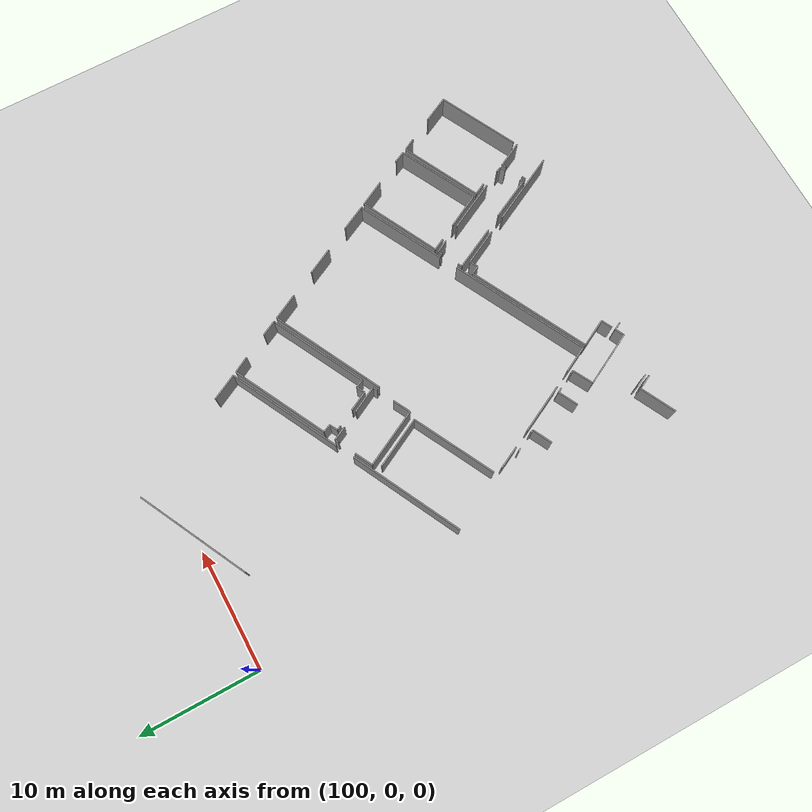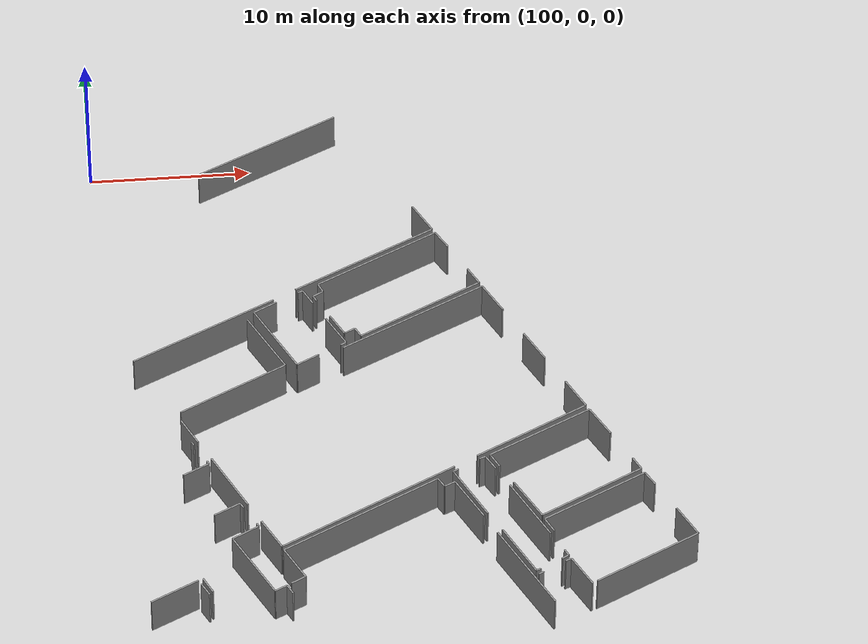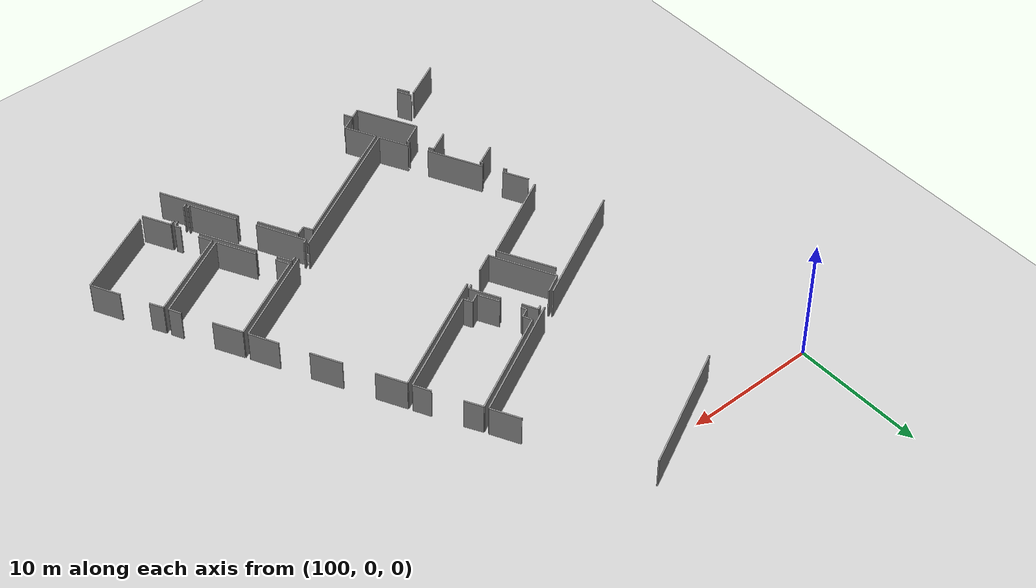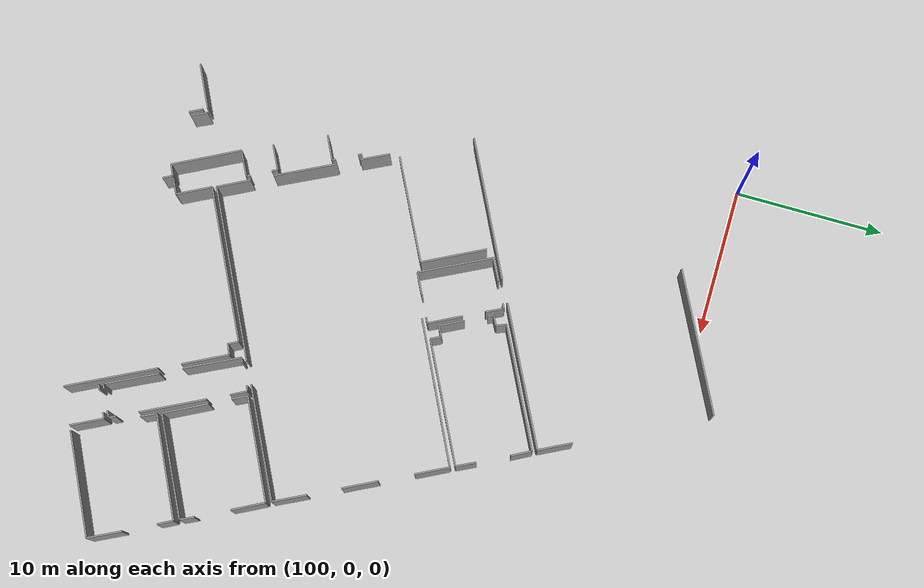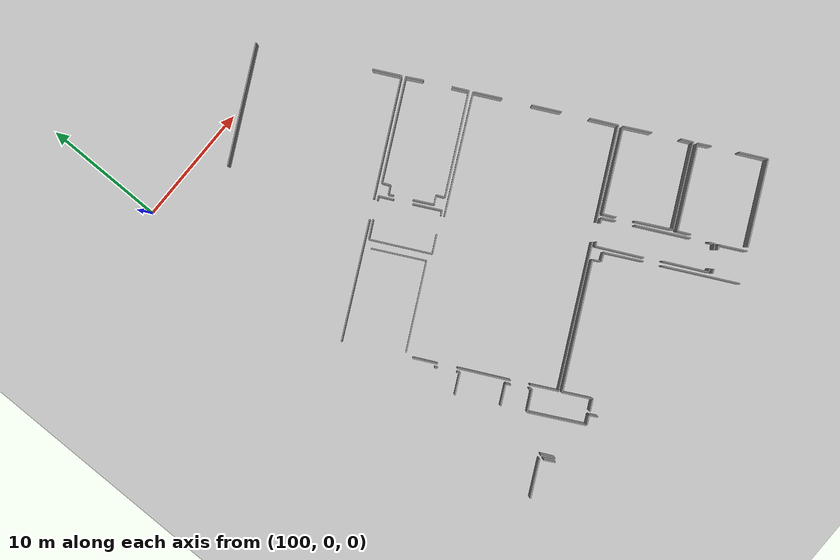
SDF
<sdf version="1.6">
 <world name="default">
  <model name="ground_plane">
   <static>1</static>
   <link name="link">
    <collision name="collision">
     <geometry><plane><normal>0 0 1</normal><size>100 100</size></plane></geometry>
     <surface><friction><ode><mu>100</mu><mu2>50</mu2></ode></friction></surface>
    </collision>
    <visual name="visual">
     <cast_shadows>0</cast_shadows>
     <geometry><plane><normal>0 0 1</normal><size>100 100</size></plane></geometry>
     <material>
      <script><uri>file://media/materials/scripts/gazebo.material</uri><name>Gazebo/Grey</name></script>
     </material>
    </visual>
   </link>
  </model>
  <model name="0510045922_A-40">
   <static>1</static>
   <link name="Wall_853">
    <collision name="Wall_853_Collision">
     <geometry><box><size>9.88843768265 0.1 2.5</size></box></geometry>
     <pose>4.94421884133 0 1.25 0 0 0</pose>
    </collision>
    <visual name="Wall_853_Visual">
     <pose>4.94421884133 0 1.25 0 0 0</pose>
     <geometry><box><size>9.88843768265 0.1 2.5</size></box></geometry>
     <material>
      <script><uri>file://media/materials/scripts/gazebo.material</uri><name>Gazebo/Grey</name></script>
      <ambient>1 1 1 1</ambient>
     </material>
    </visual>
    <pose>240.852564021 -103.605108979 0 0 0 0.468590665649</pose>
   </link>
   <link name="Wall_856">
    <collision name="Wall_856_Collision">
     <geometry><box><size>2.32012355589 0.1 2.5</size></box></geometry>
     <pose>1.16006177794 0 1.25 0 0 0</pose>
    </collision>
    <visual name="Wall_856_Visual">
     <pose>1.16006177794 0 1.25 0 0 0</pose>
     <geometry><box><size>2.32012355589 0.1 2.5</size></box></geometry>
     <material>
      <script><uri>file://media/materials/scripts/gazebo.material</uri><name>Gazebo/Grey</name></script>
      <ambient>1 1 1 1</ambient>
     </material>
    </visual>
    <pose>253.924941221 -107.462260914 0 0 0 -1.09881966004</pose>
   </link>
   <link name="Wall_857">
    <collision name="Wall_857_Collision">
     <geometry><box><size>9.86540242691 0.1 2.5</size></box></geometry>
     <pose>4.93270121346 0 1.25 0 0 0</pose>
    </collision>
    <visual name="Wall_857_Visual">
     <pose>4.93270121346 0 1.25 0 0 0</pose>
     <geometry><box><size>9.86540242691 0.1 2.5</size></box></geometry>
     <material>
      <script><uri>file://media/materials/scripts/gazebo.material</uri><name>Gazebo/Grey</name></script>
      <ambient>1 1 1 1</ambient>
     </material>
    </visual>
    <pose>254.979780136 -109.528728474 0 0 0 -2.66907277639</pose>
   </link>
   <link name="Wall_858">
    <collision name="Wall_858_Collision">
     <geometry><box><size>9.83522041012 0.1 2.5</size></box></geometry>
     <pose>4.91761020506 0 1.25 0 0 0</pose>
    </collision>
    <visual name="Wall_858_Visual">
     <pose>4.91761020506 0 1.25 0 0 0</pose>
     <geometry><box><size>9.83522041012 0.1 2.5</size></box></geometry>
     <material>
      <script><uri>file://media/materials/scripts/gazebo.material</uri><name>Gazebo/Grey</name></script>
      <ambient>1 1 1 1</ambient>
     </material>
    </visual>
    <pose>244.774531359 -114.782334625 0 0 0 -2.67339132095</pose>
   </link>
   <link name="Wall_863">
    <collision name="Wall_863_Collision">
     <geometry><box><size>4.43714760593 0.1 2.5</size></box></geometry>
     <pose>2.21857380297 0 1.25 0 0 0</pose>
    </collision>
    <visual name="Wall_863_Visual">
     <pose>2.21857380297 0 1.25 0 0 0</pose>
     <geometry><box><size>4.43714760593 0.1 2.5</size></box></geometry>
     <material>
      <script><uri>file://media/materials/scripts/gazebo.material</uri><name>Gazebo/Grey</name></script>
      <ambient>1 1 1 1</ambient>
     </material>
    </visual>
    <pose>243.094414437 -116.32773718 0 0 0 -1.09538967794</pose>
   </link>
   <link name="Wall_864">
    <collision name="Wall_864_Collision">
     <geometry><box><size>7.33349535567 0.1 2.5</size></box></geometry>
     <pose>3.66674767783 0 1.25 0 0 0</pose>
    </collision>
    <visual name="Wall_864_Visual">
     <pose>3.66674767783 0 1.25 0 0 0</pose>
     <geometry><box><size>7.33349535567 0.1 2.5</size></box></geometry>
     <material>
      <script><uri>file://media/materials/scripts/gazebo.material</uri><name>Gazebo/Grey</name></script>
      <ambient>1 1 1 1</ambient>
     </material>
    </visual>
    <pose>245.125297071 -120.272834721 0 0 0 -2.66600947746</pose>
   </link>
   <link name="Wall_867">
    <collision name="Wall_867_Collision">
     <geometry><box><size>8.46894523162 0.1 2.5</size></box></geometry>
     <pose>4.23447261581 0 1.25 0 0 0</pose>
    </collision>
    <visual name="Wall_867_Visual">
     <pose>4.23447261581 0 1.25 0 0 0</pose>
     <geometry><box><size>8.46894523162 0.1 2.5</size></box></geometry>
     <material>
      <script><uri>file://media/materials/scripts/gazebo.material</uri><name>Gazebo/Grey</name></script>
      <ambient>1 1 1 1</ambient>
     </material>
    </visual>
    <pose>247.588282392 -113.686064688 0 0 0 0.471727861592</pose>
   </link>
   <link name="Wall_868">
    <collision name="Wall_868_Collision">
     <geometry><box><size>1.42261302946 0.1 2.5</size></box></geometry>
     <pose>0.711306514728 0 1.25 0 0 0</pose>
    </collision>
    <visual name="Wall_868_Visual">
     <pose>0.711306514728 0 1.25 0 0 0</pose>
     <geometry><box><size>1.42261302946 0.1 2.5</size></box></geometry>
     <material>
      <script><uri>file://media/materials/scripts/gazebo.material</uri><name>Gazebo/Grey</name></script>
      <ambient>1 1 1 1</ambient>
     </material>
    </visual>
    <pose>255.132286967 -109.837554807 0 0 0 -1.07350296104</pose>
   </link>
   <link name="Wall_869">
    <collision name="Wall_869_Collision">
     <geometry><box><size>1.36133524182 0.1 2.5</size></box></geometry>
     <pose>0.680667620912 0 1.25 0 0 0</pose>
    </collision>
    <visual name="Wall_869_Visual">
     <pose>0.680667620912 0 1.25 0 0 0</pose>
     <geometry><box><size>1.36133524182 0.1 2.5</size></box></geometry>
     <material>
      <script><uri>file://media/materials/scripts/gazebo.material</uri><name>Gazebo/Grey</name></script>
      <ambient>1 1 1 1</ambient>
     </material>
    </visual>
    <pose>256.837821694 -113.10526784 0 0 0 -1.10823422171</pose>
   </link>
   <link name="Wall_870">
    <collision name="Wall_870_Collision">
     <geometry><box><size>8.51497389838 0.1 2.5</size></box></geometry>
     <pose>4.25748694919 0 1.25 0 0 0</pose>
    </collision>
    <visual name="Wall_870_Visual">
     <pose>4.25748694919 0 1.25 0 0 0</pose>
     <geometry><box><size>8.51497389838 0.1 2.5</size></box></geometry>
     <material>
      <script><uri>file://media/materials/scripts/gazebo.material</uri><name>Gazebo/Grey</name></script>
      <ambient>1 1 1 1</ambient>
     </material>
    </visual>
    <pose>257.445307238 -114.323543242 0 0 0 -2.66715832209</pose>
   </link>
   <link name="Wall_871">
    <collision name="Wall_871_Collision">
     <geometry><box><size>0.717277671889 0.1 2.5</size></box></geometry>
     <pose>0.358638835944 0 1.25 0 0 0</pose>
    </collision>
    <visual name="Wall_871_Visual">
     <pose>0.358638835944 0 1.25 0 0 0</pose>
     <geometry><box><size>0.717277671889 0.1 2.5</size></box></geometry>
     <material>
      <script><uri>file://media/materials/scripts/gazebo.material</uri><name>Gazebo/Grey</name></script>
      <ambient>1 1 1 1</ambient>
     </material>
    </visual>
    <pose>249.870801296 -118.213484146 0 0 0 2.02968961346</pose>
   </link>
   <link name="Wall_872">
    <collision name="Wall_872_Collision">
     <geometry><box><size>0.748653610339 0.1 2.5</size></box></geometry>
     <pose>0.374326805169 0 1.25 0 0 0</pose>
    </collision>
    <visual name="Wall_872_Visual">
     <pose>0.374326805169 0 1.25 0 0 0</pose>
     <geometry><box><size>0.748653610339 0.1 2.5</size></box></geometry>
     <material>
      <script><uri>file://media/materials/scripts/gazebo.material</uri><name>Gazebo/Grey</name></script>
      <ambient>1 1 1 1</ambient>
     </material>
    </visual>
    <pose>249.553078732 -117.570413675 0 0 0 -2.65972382679</pose>
   </link>
   <link name="Wall_873">
    <collision name="Wall_873_Collision">
     <geometry><box><size>1.69977248159 0.1 2.5</size></box></geometry>
     <pose>0.849886240794 0 1.25 0 0 0</pose>
    </collision>
    <visual name="Wall_873_Visual">
     <pose>0.849886240794 0 1.25 0 0 0</pose>
     <geometry><box><size>1.69977248159 0.1 2.5</size></box></geometry>
     <material>
      <script><uri>file://media/materials/scripts/gazebo.material</uri><name>Gazebo/Grey</name></script>
      <ambient>1 1 1 1</ambient>
     </material>
    </visual>
    <pose>248.889674017 -117.917366715 0 0 0 2.04775240632</pose>
   </link>
   <link name="Wall_874">
    <collision name="Wall_874_Collision">
     <geometry><box><size>0.403989926943 0.1 2.5</size></box></geometry>
     <pose>0.201994963471 0 1.25 0 0 0</pose>
    </collision>
    <visual name="Wall_874_Visual">
     <pose>0.201994963471 0 1.25 0 0 0</pose>
     <geometry><box><size>0.403989926943 0.1 2.5</size></box></geometry>
     <material>
      <script><uri>file://media/materials/scripts/gazebo.material</uri><name>Gazebo/Grey</name></script>
      <ambient>1 1 1 1</ambient>
     </material>
    </visual>
    <pose>247.400190634 -115.034479253 0 0 0 2.03388118965</pose>
   </link>
   <link name="Wall_875">
    <collision name="Wall_875_Collision">
     <geometry><box><size>0.724848067074 0.1 2.5</size></box></geometry>
     <pose>0.362424033537 0 1.25 0 0 0</pose>
    </collision>
    <visual name="Wall_875_Visual">
     <pose>0.362424033537 0 1.25 0 0 0</pose>
     <geometry><box><size>0.724848067074 0.1 2.5</size></box></geometry>
     <material>
      <script><uri>file://media/materials/scripts/gazebo.material</uri><name>Gazebo/Grey</name></script>
      <ambient>1 1 1 1</ambient>
     </material>
    </visual>
    <pose>247.219724217 -114.673038063 0 0 0 0.501921438928</pose>
   </link>
   <link name="Wall_876">
    <collision name="Wall_876_Collision">
     <geometry><box><size>0.691795007674 0.1 2.5</size></box></geometry>
     <pose>0.345897503837 0 1.25 0 0 0</pose>
    </collision>
    <visual name="Wall_876_Visual">
     <pose>0.345897503837 0 1.25 0 0 0</pose>
     <geometry><box><size>0.691795007674 0.1 2.5</size></box></geometry>
     <material>
      <script><uri>file://media/materials/scripts/gazebo.material</uri><name>Gazebo/Grey</name></script>
      <ambient>1 1 1 1</ambient>
     </material>
    </visual>
    <pose>247.855169346 -114.324305776 0 0 0 1.96685927894</pose>
   </link>
   <link name="Wall_877">
    <collision name="Wall_877_Collision">
     <geometry><box><size>1.5980494914 0.1 2.5</size></box></geometry>
     <pose>0.799024745702 0 1.25 0 0 0</pose>
    </collision>
    <visual name="Wall_877_Visual">
     <pose>0.799024745702 0 1.25 0 0 0</pose>
     <geometry><box><size>1.5980494914 0.1 2.5</size></box></geometry>
     <material>
      <script><uri>file://media/materials/scripts/gazebo.material</uri><name>Gazebo/Grey</name></script>
      <ambient>1 1 1 1</ambient>
     </material>
    </visual>
    <pose>243.526517125 -115.738552456 0 0 0 0.482285177532</pose>
   </link>
   <link name="Wall_878">
    <collision name="Wall_878_Collision">
     <geometry><box><size>0.347498582436 0.1 2.5</size></box></geometry>
     <pose>0.173749291218 0 1.25 0 0 0</pose>
    </collision>
    <visual name="Wall_878_Visual">
     <pose>0.173749291218 0 1.25 0 0 0</pose>
     <geometry><box><size>0.347498582436 0.1 2.5</size></box></geometry>
     <material>
      <script><uri>file://media/materials/scripts/gazebo.material</uri><name>Gazebo/Grey</name></script>
      <ambient>1 1 1 1</ambient>
     </material>
    </visual>
    <pose>246.309766792 -114.308546737 0 0 0 0.468227230239</pose>
   </link>
   <link name="Wall_879">
    <collision name="Wall_879_Collision">
     <geometry><box><size>1.22970847568 0.1 2.5</size></box></geometry>
     <pose>0.61485423784 0 1.25 0 0 0</pose>
    </collision>
    <visual name="Wall_879_Visual">
     <pose>0.61485423784 0 1.25 0 0 0</pose>
     <geometry><box><size>1.22970847568 0.1 2.5</size></box></geometry>
     <material>
      <script><uri>file://media/materials/scripts/gazebo.material</uri><name>Gazebo/Grey</name></script>
      <ambient>1 1 1 1</ambient>
     </material>
    </visual>
    <pose>246.619864015 -114.151718879 0 0 0 -1.11029161741</pose>
   </link>
   <link name="Wall_880">
    <collision name="Wall_880_Collision">
     <geometry><box><size>2.34407293443 0.1 2.5</size></box></geometry>
     <pose>1.17203646722 0 1.25 0 0 0</pose>
    </collision>
    <visual name="Wall_880_Visual">
     <pose>1.17203646722 0 1.25 0 0 0</pose>
     <geometry><box><size>2.34407293443 0.1 2.5</size></box></geometry>
     <material>
      <script><uri>file://media/materials/scripts/gazebo.material</uri><name>Gazebo/Grey</name></script>
      <ambient>1 1 1 1</ambient>
     </material>
    </visual>
    <pose>247.855169346 -116.602249476 0 0 0 -1.09551005808</pose>
   </link>
   <link name="Wall_881">
    <collision name="Wall_881_Collision">
     <geometry><box><size>0.397601830876 0.1 2.5</size></box></geometry>
     <pose>0.198800915438 0 1.25 0 0 0</pose>
    </collision>
    <visual name="Wall_881_Visual">
     <pose>0.198800915438 0 1.25 0 0 0</pose>
     <geometry><box><size>0.397601830876 0.1 2.5</size></box></geometry>
     <material>
      <script><uri>file://media/materials/scripts/gazebo.material</uri><name>Gazebo/Grey</name></script>
      <ambient>1 1 1 1</ambient>
     </material>
    </visual>
    <pose>248.927800724 -118.6865095 0 0 0 -2.6379092244</pose>
   </link>
   <link name="Wall_882">
    <collision name="Wall_882_Collision">
     <geometry><box><size>1.56467700025 0.1 2.5</size></box></geometry>
     <pose>0.782338500126 0 1.25 0 0 0</pose>
    </collision>
    <visual name="Wall_882_Visual">
     <pose>0.782338500126 0 1.25 0 0 0</pose>
     <geometry><box><size>1.56467700025 0.1 2.5</size></box></geometry>
     <material>
      <script><uri>file://media/materials/scripts/gazebo.material</uri><name>Gazebo/Grey</name></script>
      <ambient>1 1 1 1</ambient>
     </material>
    </visual>
    <pose>247.222265997 -119.563423778 0 0 0 -2.6615256818</pose>
   </link>
   <link name="Wall_883">
    <collision name="Wall_883_Collision">
     <geometry><box><size>5.09963957268 0.1 2.5</size></box></geometry>
     <pose>2.54981978634 0 1.25 0 0 0</pose>
    </collision>
    <visual name="Wall_883_Visual">
     <pose>2.54981978634 0 1.25 0 0 0</pose>
     <geometry><box><size>5.09963957268 0.1 2.5</size></box></geometry>
     <material>
      <script><uri>file://media/materials/scripts/gazebo.material</uri><name>Gazebo/Grey</name></script>
      <ambient>1 1 1 1</ambient>
     </material>
    </visual>
    <pose>245.834453835 -120.286051979 0 0 0 2.04044002996</pose>
   </link>
   <link name="Wall_885">
    <collision name="Wall_885_Collision">
     <geometry><box><size>9.94064656201 0.1 2.5</size></box></geometry>
     <pose>4.97032328101 0 1.25 0 0 0</pose>
    </collision>
    <visual name="Wall_885_Visual">
     <pose>4.97032328101 0 1.25 0 0 0</pose>
     <geometry><box><size>9.94064656201 0.1 2.5</size></box></geometry>
     <material>
      <script><uri>file://media/materials/scripts/gazebo.material</uri><name>Gazebo/Grey</name></script>
      <ambient>1 1 1 1</ambient>
     </material>
    </visual>
    <pose>248.724458283 -119.116324585 0 0 0 0.466506377657</pose>
   </link>
   <link name="Wall_886">
    <collision name="Wall_886_Collision">
     <geometry><box><size>2.32902720493 0.1 2.5</size></box></geometry>
     <pose>1.16451360246 0 1.25 0 0 0</pose>
    </collision>
    <visual name="Wall_886_Visual">
     <pose>1.16451360246 0 1.25 0 0 0</pose>
     <geometry><box><size>2.32902720493 0.1 2.5</size></box></geometry>
     <material>
      <script><uri>file://media/materials/scripts/gazebo.material</uri><name>Gazebo/Grey</name></script>
      <ambient>1 1 1 1</ambient>
     </material>
    </visual>
    <pose>257.60289763 -114.645332656 0 0 0 -1.09709439046</pose>
   </link>
   <link name="Wall_887">
    <collision name="Wall_887_Collision">
     <geometry><box><size>2.40059693219 0.1 2.5</size></box></geometry>
     <pose>1.2002984661 0 1.25 0 0 0</pose>
    </collision>
    <visual name="Wall_887_Visual">
     <pose>1.2002984661 0 1.25 0 0 0</pose>
     <geometry><box><size>2.40059693219 0.1 2.5</size></box></geometry>
     <material>
      <script><uri>file://media/materials/scripts/gazebo.material</uri><name>Gazebo/Grey</name></script>
      <ambient>1 1 1 1</ambient>
     </material>
    </visual>
    <pose>259.727826142 -118.820461333 0 0 0 -1.09928828683</pose>
   </link>
   <link name="Wall_888">
    <collision name="Wall_888_Collision">
     <geometry><box><size>2.28548904373 0.1 2.5</size></box></geometry>
     <pose>1.14274452186 0 1.25 0 0 0</pose>
    </collision>
    <visual name="Wall_888_Visual">
     <pose>1.14274452186 0 1.25 0 0 0</pose>
     <geometry><box><size>2.28548904373 0.1 2.5</size></box></geometry>
     <material>
      <script><uri>file://media/materials/scripts/gazebo.material</uri><name>Gazebo/Grey</name></script>
      <ambient>1 1 1 1</ambient>
     </material>
    </visual>
    <pose>261.842587533 -122.98135604 0 0 0 -1.10854133601</pose>
   </link>
   <link name="Wall_889">
    <collision name="Wall_889_Collision">
     <geometry><box><size>7.73931848973 0.1 2.5</size></box></geometry>
     <pose>3.86965924486 0 1.25 0 0 0</pose>
    </collision>
    <visual name="Wall_889_Visual">
     <pose>3.86965924486 0 1.25 0 0 0</pose>
     <geometry><box><size>7.73931848973 0.1 2.5</size></box></geometry>
     <material>
      <script><uri>file://media/materials/scripts/gazebo.material</uri><name>Gazebo/Grey</name></script>
      <ambient>1 1 1 1</ambient>
     </material>
    </visual>
    <pose>262.86184152 -125.026981 0 0 0 -2.66748729509</pose>
   </link>
   <link name="Wall_890">
    <collision name="Wall_890_Collision">
     <geometry><box><size>11.9468763032 0.1 2.5</size></box></geometry>
     <pose>5.9734381516 0 1.25 0 0 0</pose>
    </collision>
    <visual name="Wall_890_Visual">
     <pose>5.9734381516 0 1.25 0 0 0</pose>
     <geometry><box><size>11.9468763032 0.1 2.5</size></box></geometry>
     <material>
      <script><uri>file://media/materials/scripts/gazebo.material</uri><name>Gazebo/Grey</name></script>
      <ambient>1 1 1 1</ambient>
     </material>
    </visual>
    <pose>254.560386351 -129.309118638 0 0 0 -2.66852527468</pose>
   </link>
   <link name="Wall_891">
    <collision name="Wall_891_Collision">
     <geometry><box><size>2.30873690989 0.1 2.5</size></box></geometry>
     <pose>1.15436845494 0 1.25 0 0 0</pose>
    </collision>
    <visual name="Wall_891_Visual">
     <pose>1.15436845494 0 1.25 0 0 0</pose>
     <geometry><box><size>2.30873690989 0.1 2.5</size></box></geometry>
     <material>
      <script><uri>file://media/materials/scripts/gazebo.material</uri><name>Gazebo/Grey</name></script>
      <ambient>1 1 1 1</ambient>
     </material>
    </visual>
    <pose>243.925576666 -134.752341615 0 0 0 2.05024919827</pose>
   </link>
   <link name="Wall_892">
    <collision name="Wall_892_Collision">
     <geometry><box><size>4.27544011812 0.1 2.5</size></box></geometry>
     <pose>2.13772005906 0 1.25 0 0 0</pose>
    </collision>
    <visual name="Wall_892_Visual">
     <pose>2.13772005906 0 1.25 0 0 0</pose>
     <geometry><box><size>4.27544011812 0.1 2.5</size></box></geometry>
     <material>
      <script><uri>file://media/materials/scripts/gazebo.material</uri><name>Gazebo/Grey</name></script>
      <ambient>1 1 1 1</ambient>
     </material>
    </visual>
    <pose>242.141246743 -131.321700451 0 0 0 2.03694313297</pose>
   </link>
   <link name="Wall_893">
    <collision name="Wall_893_Collision">
     <geometry><box><size>2.01563004304 0.1 2.5</size></box></geometry>
     <pose>1.00781502152 0 1.25 0 0 0</pose>
    </collision>
    <visual name="Wall_893_Visual">
     <pose>1.00781502152 0 1.25 0 0 0</pose>
     <geometry><box><size>2.01563004304 0.1 2.5</size></box></geometry>
     <material>
      <script><uri>file://media/materials/scripts/gazebo.material</uri><name>Gazebo/Grey</name></script>
      <ambient>1 1 1 1</ambient>
     </material>
    </visual>
    <pose>239.502878566 -126.114100527 0 0 0 2.03495149271</pose>
   </link>
   <link name="Wall_894">
    <collision name="Wall_894_Collision">
     <geometry><box><size>7.03520125844 0.1 2.5</size></box></geometry>
     <pose>3.51760062922 0 1.25 0 0 0</pose>
    </collision>
    <visual name="Wall_894_Visual">
     <pose>3.51760062922 0 1.25 0 0 0</pose>
     <geometry><box><size>7.03520125844 0.1 2.5</size></box></geometry>
     <material>
      <script><uri>file://media/materials/scripts/gazebo.material</uri><name>Gazebo/Grey</name></script>
      <ambient>1 1 1 1</ambient>
     </material>
    </visual>
    <pose>256.756484718 -128.538450785 0 0 0 0.467363862696</pose>
   </link>
   <link name="Wall_895">
    <collision name="Wall_895_Collision">
     <geometry><box><size>2.28713297873 0.1 2.5</size></box></geometry>
     <pose>1.14356648937 0 1.25 0 0 0</pose>
    </collision>
    <visual name="Wall_895_Visual">
     <pose>1.14356648937 0 1.25 0 0 0</pose>
     <geometry><box><size>2.28713297873 0.1 2.5</size></box></geometry>
     <material>
      <script><uri>file://media/materials/scripts/gazebo.material</uri><name>Gazebo/Grey</name></script>
      <ambient>1 1 1 1</ambient>
     </material>
    </visual>
    <pose>263.037224376 -125.36885048 0 0 0 -1.0914426826</pose>
   </link>
   <link name="Wall_896">
    <collision name="Wall_896_Collision">
     <geometry><box><size>0.965399593924 0.1 2.5</size></box></geometry>
     <pose>0.482699796962 0 1.25 0 0 0</pose>
    </collision>
    <visual name="Wall_896_Visual">
     <pose>0.482699796962 0 1.25 0 0 0</pose>
     <geometry><box><size>0.965399593924 0.1 2.5</size></box></geometry>
     <material>
      <script><uri>file://media/materials/scripts/gazebo.material</uri><name>Gazebo/Grey</name></script>
      <ambient>1 1 1 1</ambient>
     </material>
    </visual>
    <pose>265.16977823 -129.487043274 0 0 0 -1.12139645829</pose>
   </link>
   <link name="Wall_897">
    <collision name="Wall_897_Collision">
     <geometry><box><size>7.00420326299 0.1 2.5</size></box></geometry>
     <pose>3.5021016315 0 1.25 0 0 0</pose>
    </collision>
    <visual name="Wall_897_Visual">
     <pose>3.5021016315 0 1.25 0 0 0</pose>
     <geometry><box><size>7.00420326299 0.1 2.5</size></box></geometry>
     <material>
      <script><uri>file://media/materials/scripts/gazebo.material</uri><name>Gazebo/Grey</name></script>
      <ambient>1 1 1 1</ambient>
     </material>
    </visual>
    <pose>265.589172015 -130.356586389 0 0 0 -2.66694149611</pose>
   </link>
   <link name="Wall_898">
    <collision name="Wall_898_Collision">
     <geometry><box><size>3.08143176114 0.1 2.5</size></box></geometry>
     <pose>1.54071588057 0 1.25 0 0 0</pose>
    </collision>
    <visual name="Wall_898_Visual">
     <pose>1.54071588057 0 1.25 0 0 0</pose>
     <geometry><box><size>3.08143176114 0.1 2.5</size></box></geometry>
     <material>
      <script><uri>file://media/materials/scripts/gazebo.material</uri><name>Gazebo/Grey</name></script>
      <ambient>1 1 1 1</ambient>
     </material>
    </visual>
    <pose>259.359267967 -133.557704772 0 0 0 2.05189346324</pose>
   </link>
   <link name="Wall_899">
    <collision name="Wall_899_Collision">
     <geometry><box><size>1.06783657288 0.1 2.5</size></box></geometry>
     <pose>0.533918286438 0 1.25 0 0 0</pose>
    </collision>
    <visual name="Wall_899_Visual">
     <pose>0.533918286438 0 1.25 0 0 0</pose>
     <geometry><box><size>1.06783657288 0.1 2.5</size></box></geometry>
     <material>
      <script><uri>file://media/materials/scripts/gazebo.material</uri><name>Gazebo/Grey</name></script>
      <ambient>1 1 1 1</ambient>
     </material>
    </visual>
    <pose>257.231797674 -129.494668615 0 0 0 2.0321020197</pose>
   </link>
   <link name="Wall_900">
    <collision name="Wall_900_Collision">
     <geometry><box><size>7.03539651141 0.1 2.5</size></box></geometry>
     <pose>3.51769825571 0 1.25 0 0 0</pose>
    </collision>
    <visual name="Wall_900_Visual">
     <pose>3.51769825571 0 1.25 0 0 0</pose>
     <geometry><box><size>7.03539651141 0.1 2.5</size></box></geometry>
     <material>
      <script><uri>file://media/materials/scripts/gazebo.material</uri><name>Gazebo/Grey</name></script>
      <ambient>1 1 1 1</ambient>
     </material>
    </visual>
    <pose>259.468564529 -133.86322679 0 0 0 0.465812667338</pose>
   </link>
   <link name="Wall_901">
    <collision name="Wall_901_Collision">
     <geometry><box><size>1.08422504487 0.1 2.5</size></box></geometry>
     <pose>0.542112522433 0 1.25 0 0 0</pose>
    </collision>
    <visual name="Wall_901_Visual">
     <pose>0.542112522433 0 1.25 0 0 0</pose>
     <geometry><box><size>1.08422504487 0.1 2.5</size></box></geometry>
     <material>
      <script><uri>file://media/materials/scripts/gazebo.material</uri><name>Gazebo/Grey</name></script>
      <ambient>1 1 1 1</ambient>
     </material>
    </visual>
    <pose>265.754387749 -130.703285251 0 0 0 -1.07747419217</pose>
   </link>
   <link name="Wall_902">
    <collision name="Wall_902_Collision">
     <geometry><box><size>2.30231175027 0.1 2.5</size></box></geometry>
     <pose>1.15115587513 0 1.25 0 0 0</pose>
    </collision>
    <visual name="Wall_902_Visual">
     <pose>1.15115587513 0 1.25 0 0 0</pose>
     <geometry><box><size>2.30231175027 0.1 2.5</size></box></geometry>
     <material>
      <script><uri>file://media/materials/scripts/gazebo.material</uri><name>Gazebo/Grey</name></script>
      <ambient>1 1 1 1</ambient>
     </material>
    </visual>
    <pose>267.299790303 -133.652513185 0 0 0 -1.10601314012</pose>
   </link>
   <link name="Wall_903">
    <collision name="Wall_903_Collision">
     <geometry><box><size>7.05248096549 0.1 2.5</size></box></geometry>
     <pose>3.52624048275 0 1.25 0 0 0</pose>
    </collision>
    <visual name="Wall_903_Visual">
     <pose>3.52624048275 0 1.25 0 0 0</pose>
     <geometry><box><size>7.05248096549 0.1 2.5</size></box></geometry>
     <material>
      <script><uri>file://media/materials/scripts/gazebo.material</uri><name>Gazebo/Grey</name></script>
      <ambient>1 1 1 1</ambient>
     </material>
    </visual>
    <pose>268.331753193 -135.71059287 0 0 0 -2.67417342391</pose>
   </link>
   <link name="Wall_905">
    <collision name="Wall_905_Collision">
     <geometry><box><size>1.06792369252 0.1 2.5</size></box></geometry>
     <pose>0.533961846258 0 1.25 0 0 0</pose>
    </collision>
    <visual name="Wall_905_Visual">
     <pose>0.533961846258 0 1.25 0 0 0</pose>
     <geometry><box><size>1.06792369252 0.1 2.5</size></box></geometry>
     <material>
      <script><uri>file://media/materials/scripts/gazebo.material</uri><name>Gazebo/Grey</name></script>
      <ambient>1 1 1 1</ambient>
     </material>
    </visual>
    <pose>259.933710364 -134.824528182 0 0 0 2.02145765288</pose>
   </link>
   <link name="Wall_906">
    <collision name="Wall_906_Collision">
     <geometry><box><size>10.6428027064 0.1 2.5</size></box></geometry>
     <pose>5.32140135321 0 1.25 0 0 0</pose>
    </collision>
    <visual name="Wall_906_Visual">
     <pose>5.32140135321 0 1.25 0 0 0</pose>
     <geometry><box><size>10.6428027064 0.1 2.5</size></box></geometry>
     <material>
      <script><uri>file://media/materials/scripts/gazebo.material</uri><name>Gazebo/Grey</name></script>
      <ambient>1 1 1 1</ambient>
     </material>
    </visual>
    <pose>244.019622546 -135.026853911 0 0 0 0.472170858126</pose>
   </link>
   <link name="Wall_907">
    <collision name="Wall_907_Collision">
     <geometry><box><size>0.71761198549 0.1 2.5</size></box></geometry>
     <pose>0.358805992745 0 1.25 0 0 0</pose>
    </collision>
    <visual name="Wall_907_Visual">
     <pose>0.358805992745 0 1.25 0 0 0</pose>
     <geometry><box><size>0.71761198549 0.1 2.5</size></box></geometry>
     <material>
      <script><uri>file://media/materials/scripts/gazebo.material</uri><name>Gazebo/Grey</name></script>
      <ambient>1 1 1 1</ambient>
     </material>
    </visual>
    <pose>253.497922094 -130.186287094 0 0 0 -1.07625522183</pose>
   </link>
   <link name="Wall_908">
    <collision name="Wall_908_Collision">
     <geometry><box><size>0.720796656289 0.1 2.5</size></box></geometry>
     <pose>0.360398328144 0 1.25 0 0 0</pose>
    </collision>
    <visual name="Wall_908_Visual">
     <pose>0.360398328144 0 1.25 0 0 0</pose>
     <geometry><box><size>0.720796656289 0.1 2.5</size></box></geometry>
     <material>
      <script><uri>file://media/materials/scripts/gazebo.material</uri><name>Gazebo/Grey</name></script>
      <ambient>1 1 1 1</ambient>
     </material>
    </visual>
    <pose>253.838520684 -130.817919553 0 0 0 0.427999154312</pose>
   </link>
   <link name="Wall_909">
    <collision name="Wall_909_Collision">
     <geometry><box><size>3.15893829449 0.1 2.5</size></box></geometry>
     <pose>1.57946914724 0 1.25 0 0 0</pose>
    </collision>
    <visual name="Wall_909_Visual">
     <pose>1.57946914724 0 1.25 0 0 0</pose>
     <geometry><box><size>3.15893829449 0.1 2.5</size></box></geometry>
     <material>
      <script><uri>file://media/materials/scripts/gazebo.material</uri><name>Gazebo/Grey</name></script>
      <ambient>1 1 1 1</ambient>
     </material>
    </visual>
    <pose>254.494300057 -130.518751986 0 0 0 -1.09523766459</pose>
   </link>
   <link name="Wall_910">
    <collision name="Wall_910_Collision">
     <geometry><box><size>6.23231036195 0.1 2.5</size></box></geometry>
     <pose>3.11615518098 0 1.25 0 0 0</pose>
    </collision>
    <visual name="Wall_910_Visual">
     <pose>3.11615518098 0 1.25 0 0 0</pose>
     <geometry><box><size>6.23231036195 0.1 2.5</size></box></geometry>
     <material>
      <script><uri>file://media/materials/scripts/gazebo.material</uri><name>Gazebo/Grey</name></script>
      <ambient>1 1 1 1</ambient>
     </material>
    </visual>
    <pose>256.614145009 -134.694897376 0 0 0 -1.100546107</pose>
   </link>
   <link name="Wall_915">
    <collision name="Wall_915_Collision">
     <geometry><box><size>0.973477681388 0.1 2.5</size></box></geometry>
     <pose>0.486738840694 0 1.25 0 0 0</pose>
    </collision>
    <visual name="Wall_915_Visual">
     <pose>0.486738840694 0 1.25 0 0 0</pose>
     <geometry><box><size>0.973477681388 0.1 2.5</size></box></geometry>
     <material>
      <script><uri>file://media/materials/scripts/gazebo.material</uri><name>Gazebo/Grey</name></script>
      <ambient>1 1 1 1</ambient>
     </material>
    </visual>
    <pose>244.276342378 -137.629891339 0 0 0 0.478361016396</pose>
   </link>
   <link name="Wall_916">
    <collision name="Wall_916_Collision">
     <geometry><box><size>2.42902451417 0.1 2.5</size></box></geometry>
     <pose>1.21451225708 0 1.25 0 0 0</pose>
    </collision>
    <visual name="Wall_916_Visual">
     <pose>1.21451225708 0 1.25 0 0 0</pose>
     <geometry><box><size>2.42902451417 0.1 2.5</size></box></geometry>
     <material>
      <script><uri>file://media/materials/scripts/gazebo.material</uri><name>Gazebo/Grey</name></script>
      <ambient>1 1 1 1</ambient>
     </material>
    </visual>
    <pose>245.140547754 -137.181775434 0 0 0 2.05044930863</pose>
   </link>
   <link name="Wall_918">
    <collision name="Wall_918_Collision">
     <geometry><box><size>0.342504240918 0.1 2.5</size></box></geometry>
     <pose>0.171252120459 0 1.25 0 0 0</pose>
    </collision>
    <visual name="Wall_918_Visual">
     <pose>0.171252120459 0 1.25 0 0 0</pose>
     <geometry><box><size>0.342504240918 0.1 2.5</size></box></geometry>
     <material>
      <script><uri>file://media/materials/scripts/gazebo.material</uri><name>Gazebo/Grey</name></script>
      <ambient>1 1 1 1</ambient>
     </material>
    </visual>
    <pose>258.695863252 -138.091732859 0 0 0 0.455682294554</pose>
   </link>
   <link name="Wall_919">
    <collision name="Wall_919_Collision">
     <geometry><box><size>0.391940907391 0.1 2.5</size></box></geometry>
     <pose>0.195970453695 0 1.25 0 0 0</pose>
    </collision>
    <visual name="Wall_919_Visual">
     <pose>0.195970453695 0 1.25 0 0 0</pose>
     <geometry><box><size>0.391940907391 0.1 2.5</size></box></geometry>
     <material>
      <script><uri>file://media/materials/scripts/gazebo.material</uri><name>Gazebo/Grey</name></script>
      <ambient>1 1 1 1</ambient>
     </material>
    </visual>
    <pose>260.360729491 -137.225494059 0 0 0 0.462487516714</pose>
   </link>
   <link name="Wall_920">
    <collision name="Wall_920_Collision">
     <geometry><box><size>2.26270072573 0.1 2.5</size></box></geometry>
     <pose>1.13135036287 0 1.25 0 0 0</pose>
    </collision>
    <visual name="Wall_920_Visual">
     <pose>1.13135036287 0 1.25 0 0 0</pose>
     <geometry><box><size>2.26270072573 0.1 2.5</size></box></geometry>
     <material>
      <script><uri>file://media/materials/scripts/gazebo.material</uri><name>Gazebo/Grey</name></script>
      <ambient>1 1 1 1</ambient>
     </material>
    </visual>
    <pose>260.711495202 -137.050619559 0 0 0 -1.09468955544</pose>
   </link>
   <link name="Wall_922">
    <collision name="Wall_922_Collision">
     <geometry><box><size>3.70275035198 0.1 2.5</size></box></geometry>
     <pose>1.85137517599 0 1.25 0 0 0</pose>
    </collision>
    <visual name="Wall_922_Visual">
     <pose>1.85137517599 0 1.25 0 0 0</pose>
     <geometry><box><size>3.70275035198 0.1 2.5</size></box></geometry>
     <material>
      <script><uri>file://media/materials/scripts/gazebo.material</uri><name>Gazebo/Grey</name></script>
      <ambient>1 1 1 1</ambient>
     </material>
    </visual>
    <pose>258.578941348 -137.808578509 0 0 0 2.03561050984</pose>
   </link>
   <link name="Wall_923">
    <collision name="Wall_923_Collision">
     <geometry><box><size>3.86644076918 0.1 2.5</size></box></geometry>
     <pose>1.93322038459 0 1.25 0 0 0</pose>
    </collision>
    <visual name="Wall_923_Visual">
     <pose>1.93322038459 0 1.25 0 0 0</pose>
     <geometry><box><size>3.86644076918 0.1 2.5</size></box></geometry>
     <material>
      <script><uri>file://media/materials/scripts/gazebo.material</uri><name>Gazebo/Grey</name></script>
      <ambient>1 1 1 1</ambient>
     </material>
    </visual>
    <pose>256.182042321 -133.171608312 0 0 0 2.0327681568</pose>
   </link>
   <link name="Wall_924">
    <collision name="Wall_924_Collision">
     <geometry><box><size>0.358596589788 0.1 2.5</size></box></geometry>
     <pose>0.179298294894 0 1.25 0 0 0</pose>
    </collision>
    <visual name="Wall_924_Visual">
     <pose>0.179298294894 0 1.25 0 0 0</pose>
     <geometry><box><size>0.358596589788 0.1 2.5</size></box></geometry>
     <material>
      <script><uri>file://media/materials/scripts/gazebo.material</uri><name>Gazebo/Grey</name></script>
      <ambient>1 1 1 1</ambient>
     </material>
    </visual>
    <pose>254.45871513 -129.710465781 0 0 0 0.511848898952</pose>
   </link>
   <link name="Wall_925">
    <collision name="Wall_925_Collision">
     <geometry><box><size>0.395919420555 0.1 2.5</size></box></geometry>
     <pose>0.197959710277 0 1.25 0 0 0</pose>
    </collision>
    <visual name="Wall_925_Visual">
     <pose>0.197959710277 0 1.25 0 0 0</pose>
     <geometry><box><size>0.395919420555 0.1 2.5</size></box></geometry>
     <material>
      <script><uri>file://media/materials/scripts/gazebo.material</uri><name>Gazebo/Grey</name></script>
      <ambient>1 1 1 1</ambient>
     </material>
    </visual>
    <pose>256.100705344 -128.813217259 0 0 0 0.37394948491</pose>
   </link>
   <link name="Wall_926">
    <collision name="Wall_926_Collision">
     <geometry><box><size>1.1211506892 0.1 2.5</size></box></geometry>
     <pose>0.5605753446 0 1.25 0 0 0</pose>
    </collision>
    <visual name="Wall_926_Visual">
     <pose>0.5605753446 0 1.25 0 0 0</pose>
     <geometry><box><size>1.1211506892 0.1 2.5</size></box></geometry>
     <material>
      <script><uri>file://media/materials/scripts/gazebo.material</uri><name>Gazebo/Grey</name></script>
      <ambient>1 1 1 1</ambient>
     </material>
    </visual>
    <pose>256.469263519 -128.668589947 0 0 0 -1.08230595955</pose>
   </link>
   <link name="Wall_927">
    <collision name="Wall_927_Collision">
     <geometry><box><size>4.4478180058 0.1 2.5</size></box></geometry>
     <pose>2.2239090029 0 1.25 0 0 0</pose>
    </collision>
    <visual name="Wall_927_Visual">
     <pose>2.2239090029 0 1.25 0 0 0</pose>
     <geometry><box><size>4.4478180058 0.1 2.5</size></box></geometry>
     <material>
      <script><uri>file://media/materials/scripts/gazebo.material</uri><name>Gazebo/Grey</name></script>
      <ambient>1 1 1 1</ambient>
     </material>
    </visual>
    <pose>257.694401728 -131.046425621 0 0 0 -1.10175621231</pose>
   </link>
   <link name="Wall_928">
    <collision name="Wall_928_Collision">
     <geometry><box><size>0.466362076896 0.1 2.5</size></box></geometry>
     <pose>0.233181038448 0 1.25 0 0 0</pose>
    </collision>
    <visual name="Wall_928_Visual">
     <pose>0.233181038448 0 1.25 0 0 0</pose>
     <geometry><box><size>0.466362076896 0.1 2.5</size></box></geometry>
     <material>
      <script><uri>file://media/materials/scripts/gazebo.material</uri><name>Gazebo/Grey</name></script>
      <ambient>1 1 1 1</ambient>
     </material>
    </visual>
    <pose>260.378521955 -136.351375739 0 0 0 -1.12567414578</pose>
   </link>
   <link name="Wall_929">
    <collision name="Wall_929_Collision">
     <geometry><box><size>0.474795892087 0.1 2.5</size></box></geometry>
     <pose>0.237397946044 0 1.25 0 0 0</pose>
    </collision>
    <visual name="Wall_929_Visual">
     <pose>0.237397946044 0 1.25 0 0 0</pose>
     <geometry><box><size>0.474795892087 0.1 2.5</size></box></geometry>
     <material>
      <script><uri>file://media/materials/scripts/gazebo.material</uri><name>Gazebo/Grey</name></script>
      <ambient>1 1 1 1</ambient>
     </material>
    </visual>
    <pose>260.579322615 -136.772294592 0 0 0 -2.59933694532</pose>
   </link>
   <link name="Wall_930">
    <collision name="Wall_930_Collision">
     <geometry><box><size>0.310800207802 0.1 2.5</size></box></geometry>
     <pose>0.155400103901 0 1.25 0 0 0</pose>
    </collision>
    <visual name="Wall_930_Visual">
     <pose>0.155400103901 0 1.25 0 0 0</pose>
     <geometry><box><size>0.310800207802 0.1 2.5</size></box></geometry>
     <material>
      <script><uri>file://media/materials/scripts/gazebo.material</uri><name>Gazebo/Grey</name></script>
      <ambient>1 1 1 1</ambient>
     </material>
    </visual>
    <pose>258.858537205 -137.67284743 0 0 0 -2.68964897248</pose>
   </link>
   <link name="Wall_938">
    <collision name="Wall_938_Collision">
     <geometry><box><size>0.952420592171 0.1 2.5</size></box></geometry>
     <pose>0.476210296085 0 1.25 0 0 0</pose>
    </collision>
    <visual name="Wall_938_Visual">
     <pose>0.476210296085 0 1.25 0 0 0</pose>
     <geometry><box><size>0.952420592171 0.1 2.5</size></box></geometry>
     <material>
      <script><uri>file://media/materials/scripts/gazebo.material</uri><name>Gazebo/Grey</name></script>
      <ambient>1 1 1 1</ambient>
     </material>
    </visual>
    <pose>239.045358073 -137.255741247 0 0 0 -1.08184370978</pose>
   </link>
   <link name="Wall_945">
    <collision name="Wall_945_Collision">
     <geometry><box><size>3.17022846207 0.1 2.5</size></box></geometry>
     <pose>1.58511423103 0 1.25 0 0 0</pose>
    </collision>
    <visual name="Wall_945_Visual">
     <pose>1.58511423103 0 1.25 0 0 0</pose>
     <geometry><box><size>3.17022846207 0.1 2.5</size></box></geometry>
     <material>
      <script><uri>file://media/materials/scripts/gazebo.material</uri><name>Gazebo/Grey</name></script>
      <ambient>1 1 1 1</ambient>
     </material>
    </visual>
    <pose>238.890309462 -136.974111965 0 0 0 -2.67335545367</pose>
   </link>
   <link name="Wall_980">
    <collision name="Wall_980_Collision">
     <geometry><box><size>1.16197465071 0.1 2.5</size></box></geometry>
     <pose>0.580987325354 0 1.25 0 0 0</pose>
    </collision>
    <visual name="Wall_980_Visual">
     <pose>0.580987325354 0 1.25 0 0 0</pose>
     <geometry><box><size>1.16197465071 0.1 2.5</size></box></geometry>
     <material>
      <script><uri>file://media/materials/scripts/gazebo.material</uri><name>Gazebo/Grey</name></script>
      <ambient>1 1 1 1</ambient>
     </material>
    </visual>
    <pose>239.688428544 -137.902878566 0 0 0 2.0284764856</pose>
   </link>
   <link name="Wall_1017">
    <collision name="Wall_1017_Collision">
     <geometry><box><size>0.256316353552 0.1 2.5</size></box></geometry>
     <pose>0.128158176776 0 1.25 0 0 0</pose>
    </collision>
    <visual name="Wall_1017_Visual">
     <pose>0.128158176776 0 1.25 0 0 0</pose>
     <geometry><box><size>0.256316353552 0.1 2.5</size></box></geometry>
     <material>
      <script><uri>file://media/materials/scripts/gazebo.material</uri><name>Gazebo/Grey</name></script>
      <ambient>1 1 1 1</ambient>
     </material>
    </visual>
    <pose>239.121611489 -126.114100527 0 0 0 -1.02901628315</pose>
   </link>
   <link name="Wall_1018">
    <collision name="Wall_1018_Collision">
     <geometry><box><size>0.242464545688 0.1 2.5</size></box></geometry>
     <pose>0.121232272844 0 1.25 0 0 0</pose>
    </collision>
    <visual name="Wall_1018_Visual">
     <pose>0.121232272844 0 1.25 0 0 0</pose>
     <geometry><box><size>0.242464545688 0.1 2.5</size></box></geometry>
     <material>
      <script><uri>file://media/materials/scripts/gazebo.material</uri><name>Gazebo/Grey</name></script>
      <ambient>1 1 1 1</ambient>
     </material>
    </visual>
    <pose>239.952773718 -127.680854038 0 0 0 -1.13809568258</pose>
   </link>
   <link name="Wall_1019">
    <collision name="Wall_1019_Collision">
     <geometry><box><size>1.76183569266 0.1 2.5</size></box></geometry>
     <pose>0.880917846332 0 1.25 0 0 0</pose>
    </collision>
    <visual name="Wall_1019_Visual">
     <pose>0.880917846332 0 1.25 0 0 0</pose>
     <geometry><box><size>1.76183569266 0.1 2.5</size></box></geometry>
     <material>
      <script><uri>file://media/materials/scripts/gazebo.material</uri><name>Gazebo/Grey</name></script>
      <ambient>1 1 1 1</ambient>
     </material>
    </visual>
    <pose>240.054444939 -127.900972231 0 0 0 -2.67162214027</pose>
   </link>
   <link name="Wall_1021">
    <collision name="Wall_1021_Collision">
     <geometry><box><size>1.76594534483 0.1 2.5</size></box></geometry>
     <pose>0.882972672415 0 1.25 0 0 0</pose>
    </collision>
    <visual name="Wall_1021_Visual">
     <pose>0.882972672415 0 1.25 0 0 0</pose>
     <geometry><box><size>1.76594534483 0.1 2.5</size></box></geometry>
     <material>
      <script><uri>file://media/materials/scripts/gazebo.material</uri><name>Gazebo/Grey</name></script>
      <ambient>1 1 1 1</ambient>
     </material>
    </visual>
    <pose>240.125614793 -131.992222152 0 0 0 0.471371948452</pose>
   </link>
   <link name="Wall_1022">
    <collision name="Wall_1022_Collision">
     <geometry><box><size>0.397408745393 0.1 2.5</size></box></geometry>
     <pose>0.198704372697 0 1.25 0 0 0</pose>
    </collision>
    <visual name="Wall_1022_Visual">
     <pose>0.198704372697 0 1.25 0 0 0</pose>
     <geometry><box><size>0.397408745393 0.1 2.5</size></box></geometry>
     <material>
      <script><uri>file://media/materials/scripts/gazebo.material</uri><name>Gazebo/Grey</name></script>
      <ambient>1 1 1 1</ambient>
     </material>
    </visual>
    <pose>241.698976933 -131.190290398 0 0 0 -1.09942575921</pose>
   </link>
   <link name="Wall_1023">
    <collision name="Wall_1023_Collision">
     <geometry><box><size>0.246992674547 0.1 2.5</size></box></geometry>
     <pose>0.123496337273 0 1.25 0 0 0</pose>
    </collision>
    <visual name="Wall_1023_Visual">
     <pose>0.123496337273 0 1.25 0 0 0</pose>
     <geometry><box><size>0.246992674547 0.1 2.5</size></box></geometry>
     <material>
      <script><uri>file://media/materials/scripts/gazebo.material</uri><name>Gazebo/Grey</name></script>
      <ambient>1 1 1 1</ambient>
     </material>
    </visual>
    <pose>242.573349431 -132.843972803 0 0 0 -1.13522605188</pose>
   </link>
   <link name="Wall_1024">
    <collision name="Wall_1024_Collision">
     <geometry><box><size>1.80950868874 0.1 2.5</size></box></geometry>
     <pose>0.90475434437 0 1.25 0 0 0</pose>
    </collision>
    <visual name="Wall_1024_Visual">
     <pose>0.90475434437 0 1.25 0 0 0</pose>
     <geometry><box><size>1.80950868874 0.1 2.5</size></box></geometry>
     <material>
      <script><uri>file://media/materials/scripts/gazebo.material</uri><name>Gazebo/Grey</name></script>
      <ambient>1 1 1 1</ambient>
     </material>
    </visual>
    <pose>242.677562432 -133.067903667 0 0 0 -2.65118087205</pose>
   </link>
   <link name="Wall_1025">
    <collision name="Wall_1025_Collision">
     <geometry><box><size>4.75179884723 0.1 2.5</size></box></geometry>
     <pose>2.37589942362 0 1.25 0 0 0</pose>
    </collision>
    <visual name="Wall_1025_Visual">
     <pose>2.37589942362 0 1.25 0 0 0</pose>
     <geometry><box><size>4.75179884723 0.1 2.5</size></box></geometry>
     <material>
      <script><uri>file://media/materials/scripts/gazebo.material</uri><name>Gazebo/Grey</name></script>
      <ambient>1 1 1 1</ambient>
     </material>
    </visual>
    <pose>241.081324268 -133.920162674 0 0 0 -1.08915850652</pose>
   </link>
   <link name="Wall_1026">
    <collision name="Wall_1026_Collision">
     <geometry><box><size>0.806389473326 0.1 2.5</size></box></geometry>
     <pose>0.403194736663 0 1.25 0 0 0</pose>
    </collision>
    <visual name="Wall_1026_Visual">
     <pose>0.403194736663 0 1.25 0 0 0</pose>
     <geometry><box><size>0.806389473326 0.1 2.5</size></box></geometry>
     <material>
      <script><uri>file://media/materials/scripts/gazebo.material</uri><name>Gazebo/Grey</name></script>
      <ambient>1 1 1 1</ambient>
     </material>
    </visual>
    <pose>243.282506196 -138.131384635 0 0 0 0.461956040273</pose>
   </link>
   <link name="Wall_1027">
    <collision name="Wall_1027_Collision">
     <geometry><box><size>0.694894204771 0.1 2.5</size></box></geometry>
     <pose>0.347447102385 0 1.25 0 0 0</pose>
    </collision>
    <visual name="Wall_1027_Visual">
     <pose>0.347447102385 0 1.25 0 0 0</pose>
     <geometry><box><size>0.694894204771 0.1 2.5</size></box></geometry>
     <material>
      <script><uri>file://media/materials/scripts/gazebo.material</uri><name>Gazebo/Grey</name></script>
      <ambient>1 1 1 1</ambient>
     </material>
    </visual>
    <pose>244.004371862 -137.77197687 0 0 0 -1.08768128214</pose>
   </link>
   <pose>-134.15 101.210036856 0 0 0 0</pose>
  </model>
 </world>
</sdf>
